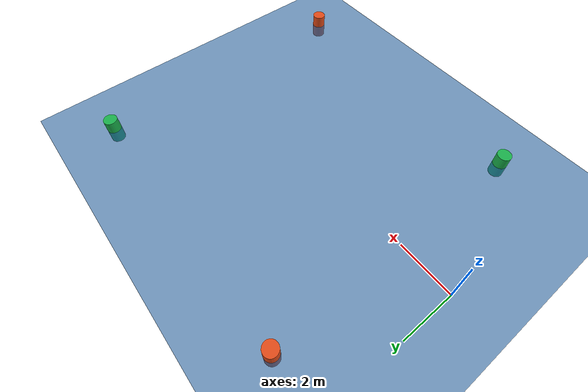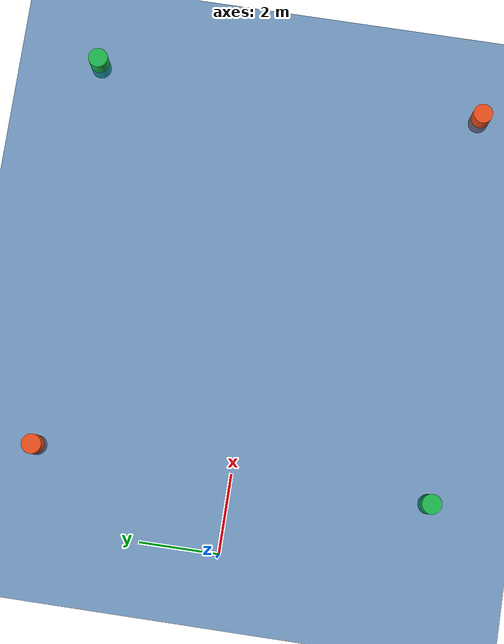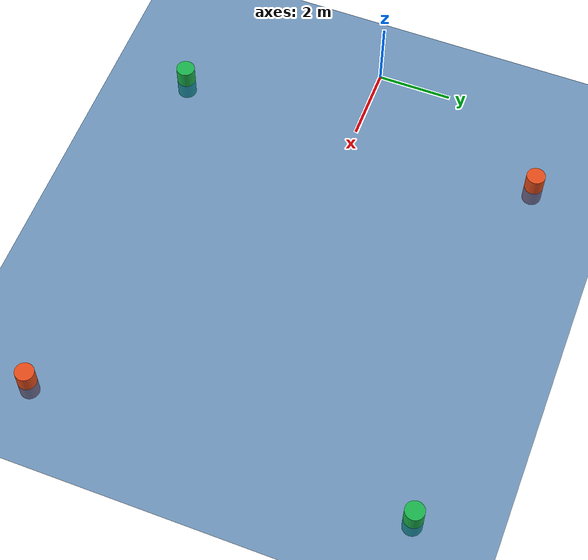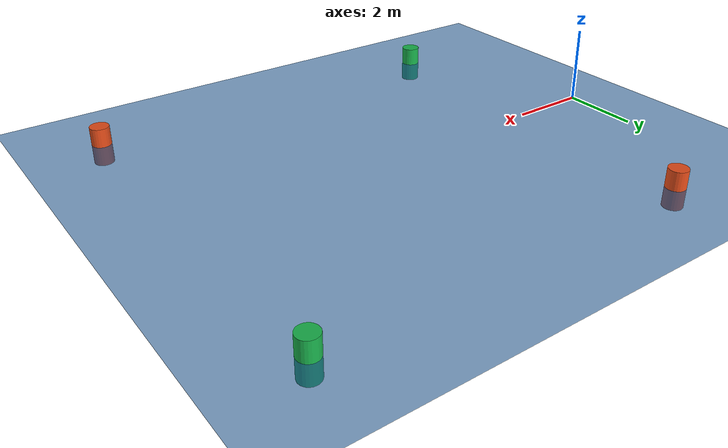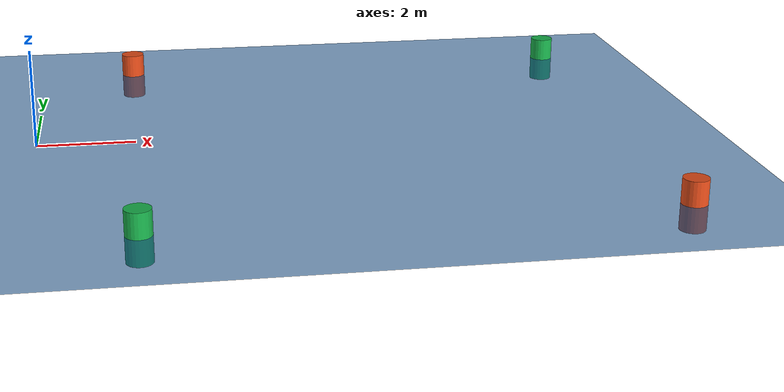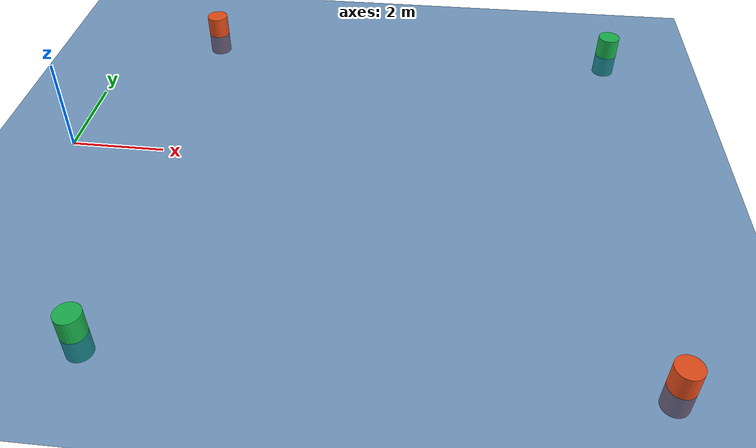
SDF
<?xml version="1.0" ?>
<sdf version="1.9">
  <world name="prop_lake">
    <physics name="default_physics" type="ode">
      <max_step_size>0.001</max_step_size>
      <real_time_factor>1.0</real_time_factor>
    </physics>

    <gravity>0 0 -9.8</gravity>
    <magnetic_field>2.2e-05 -1.1e-06 -4.2e-05</magnetic_field>

    <!-- Lake Wauburg. Only sets where the simulated GPS thinks it is: the
         localization stack takes its datum from the first fix either way. -->
    <spherical_coordinates>
      <surface_model>EARTH_WGS84</surface_model>
      <world_frame_orientation>ENU</world_frame_orientation>
      <latitude_deg>29.5286</latitude_deg>
      <longitude_deg>-82.3018</longitude_deg>
      <elevation>0</elevation>
      <heading_deg>0</heading_deg>
    </spherical_coordinates>

    <plugin filename="gz-sim-physics-system" name="gz::sim::systems::Physics" />
    <plugin
      filename="gz-sim-user-commands-system"
      name="gz::sim::systems::UserCommands"
    />
    <plugin
      filename="gz-sim-scene-broadcaster-system"
      name="gz::sim::systems::SceneBroadcaster"
    />
    <plugin filename="gz-sim-sensors-system" name="gz::sim::systems::Sensors" />
    <plugin filename="gz-sim-imu-system" name="gz::sim::systems::Imu" />
    <plugin filename="gz-sim-navsat-system" name="gz::sim::systems::NavSat" />

    <!-- Water below z = 0, air above it, so hulls float where they should.
         Graded buoyancy only handles box and sphere collisions. -->
    <plugin filename="gz-sim-buoyancy-system" name="gz::sim::systems::Buoyancy">
      <graded_buoyancy>
        <default_density>1000</default_density>
        <density_change>
          <above_depth>0</above_depth>
          <density>1.225</density>
        </density_change>
      </graded_buoyancy>
    </plugin>

    <scene>
      <ambient>0.6 0.6 0.6 1</ambient>
      <background>0.6 0.75 0.9 1</background>
      <grid>false</grid>
      <shadows>true</shadows>
    </scene>

    <light type="directional" name="sun">
      <cast_shadows>true</cast_shadows>
      <pose>0 0 100 0 0 0</pose>
      <diffuse>0.9 0.9 0.9 1</diffuse>
      <specular>0.2 0.2 0.2 1</specular>
      <direction>-0.5 0.2 -0.9</direction>
    </light>

    <!-- Something to look at. The waterline is the buoyancy plugin's, not
         this. -->
    <model name="water">
      <static>true</static>
      <link name="link">
        <visual name="visual">
          <geometry>
            <box>
              <size>300 300 0.01</size>
            </box>
          </geometry>
          <transparency>0.4</transparency>
          <cast_shadows>false</cast_shadows>
          <material>
            <ambient>0.1 0.3 0.5 1</ambient>
            <diffuse>0.1 0.35 0.6 1</diffuse>
            <specular>0.2 0.2 0.3 1</specular>
          </material>
        </visual>
      </link>
    </model>

    <model name="buoy_0">
      <static>true</static>
      <pose>12 -5 0 0 0 0</pose>
      <link name="link">
        <collision name="collision">
          <geometry>
            <cylinder>
              <length>1.0</length>
              <radius>0.25</radius>
            </cylinder>
          </geometry>
        </collision>
        <visual name="visual">
          <geometry>
            <cylinder>
              <length>1.0</length>
              <radius>0.25</radius>
            </cylinder>
          </geometry>
          <material>
            <ambient>0.9 0.3 0.1 1</ambient>
            <diffuse>0.9 0.3 0.1 1</diffuse>
          </material>
        </visual>
      </link>
    </model>

    <model name="buoy_1">
      <static>true</static>
      <pose>12 5 0 0 0 0</pose>
      <link name="link">
        <collision name="collision">
          <geometry>
            <cylinder>
              <length>1.0</length>
              <radius>0.25</radius>
            </cylinder>
          </geometry>
        </collision>
        <visual name="visual">
          <geometry>
            <cylinder>
              <length>1.0</length>
              <radius>0.25</radius>
            </cylinder>
          </geometry>
          <material>
            <ambient>0.1 0.7 0.3 1</ambient>
            <diffuse>0.1 0.7 0.3 1</diffuse>
          </material>
        </visual>
      </link>
    </model>

    <model name="buoy_2">
      <static>true</static>
      <pose>2 5 0 0 0 0</pose>
      <link name="link">
        <collision name="collision">
          <geometry>
            <cylinder>
              <length>1.0</length>
              <radius>0.25</radius>
            </cylinder>
          </geometry>
        </collision>
        <visual name="visual">
          <geometry>
            <cylinder>
              <length>1.0</length>
              <radius>0.25</radius>
            </cylinder>
          </geometry>
          <material>
            <ambient>0.9 0.3 0.1 1</ambient>
            <diffuse>0.9 0.3 0.1 1</diffuse>
          </material>
        </visual>
      </link>
    </model>

    <model name="buoy_3">
      <static>true</static>
      <pose>2 -5 0 0 0 0</pose>
      <link name="link">
        <collision name="collision">
          <geometry>
            <cylinder>
              <length>1.0</length>
              <radius>0.25</radius>
            </cylinder>
          </geometry>
        </collision>
        <visual name="visual">
          <geometry>
            <cylinder>
              <length>1.0</length>
              <radius>0.25</radius>
            </cylinder>
          </geometry>
          <material>
            <ambient>0.1 0.7 0.3 1</ambient>
            <diffuse>0.1 0.7 0.3 1</diffuse>
          </material>
        </visual>
      </link>
    </model>
  </world>
</sdf>
